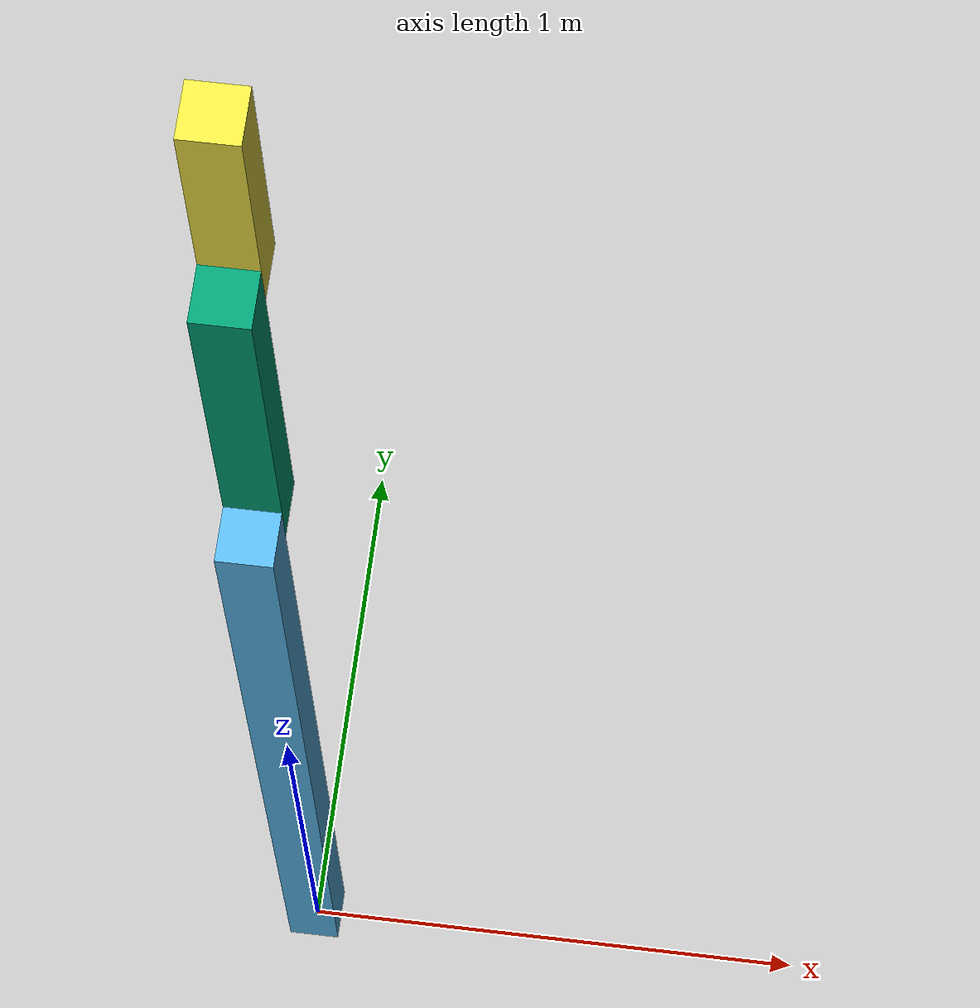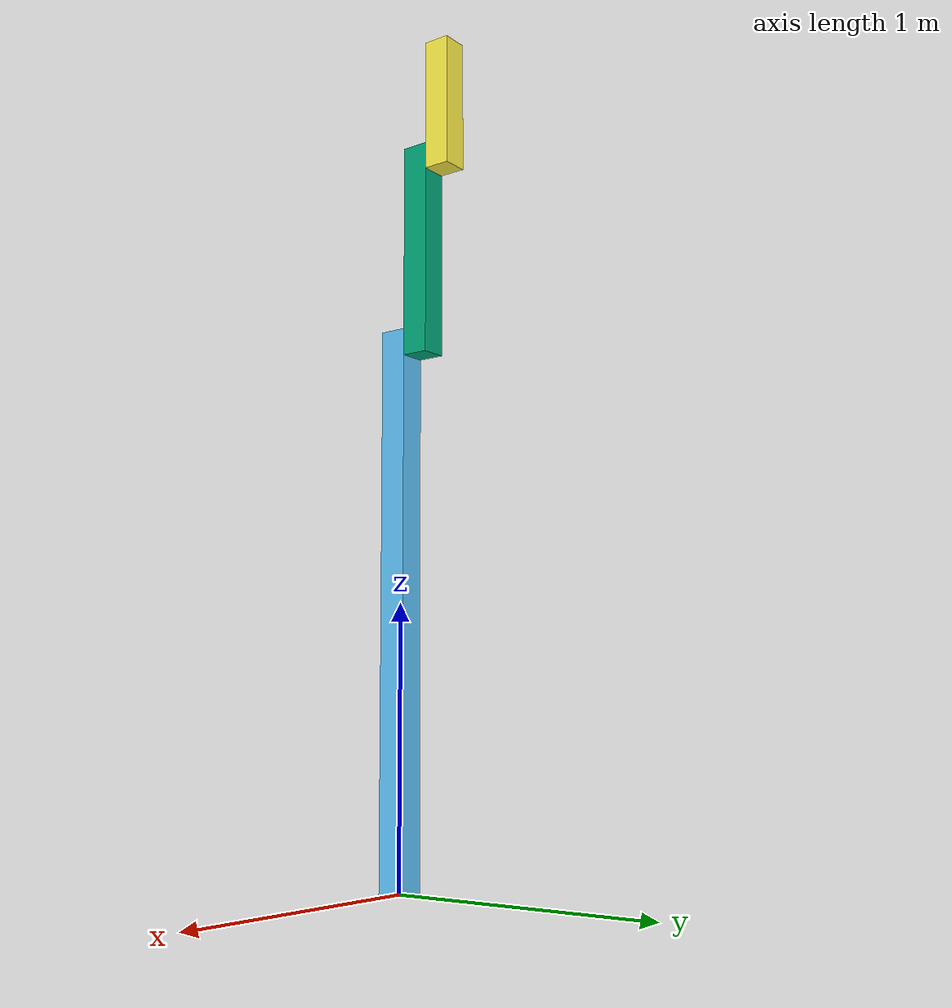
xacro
<?xml version="1.0"?>
<!-- Revolute-Revolute Manipulator -->
<robot name="arm" xmlns:xacro="http://www.ros.org/wiki/xacro">

    <!-- Constants for robot dimensions -->
    <xacro:property name="PI" value="3.1415926535897931"/>
    <xacro:property name="mass" value="1" /> <!-- arbitrary value for mass -->
    <xacro:property name="width" value="0.1" /> <!-- Square dimensions (widthxwidth) of beams -->
    <xacro:property name="height1" value="2" /> <!-- Link 1 -->
    <xacro:property name="height2" value="0.8" /> <!-- Link 2 -->
    <xacro:property name="height3" value="0.5" /> <!-- Link 3 -->
    <xacro:property name="axel_offset" value="0.05" /> <!-- Space btw top of beam and the each joint -->

    <!-- load the joint control plugins and pass the arguments -->
    <xacro:arg name="robot_components_namespace" default="arm"/>
    <xacro:arg name="trajectory_param_namespace" default="arm"/>
    <xacro:include filename="$(find simple_arm)/urdf/arm_plugin.xacro"/>
    <xacro:gzplugin_joint_control robot_components_namespace="$(arg robot_components_namespace)"/>

    <!-- Used for fixing robot to Gazebo 'base_link' -->
    <link name="world"/>

    <joint name="fixed" type="fixed">
        <parent link="world"/>
        <child link="link1"/>
    </joint>

    <!-- Base Link -->
    <link name="link1">
        <collision>
        <origin xyz="0 0 ${height1/2}" rpy="0 0 0"/>
        <geometry>
            <box size="${width} ${width} ${height1}"/>
        </geometry>
        </collision>

        <visual>
        <origin xyz="0 0 ${height1/2}" rpy="0 0 0"/>
        <geometry>
            <box size="${width} ${width} ${height1}"/>
        </geometry>
        </visual>

        <inertial>
        <origin xyz="0 0 ${height1/2}" rpy="0 0 0"/>
        <mass value="${mass}"/>
        <inertia
            ixx="${mass / 12.0 * (width*width + height1*height1)}" ixy="0.0" ixz="0.0"
            iyy="${mass / 12.0 * (height1*height1 + width*width)}" iyz="0.0"
            izz="${mass / 12.0 * (width*width + width*width)}"/>
        </inertial>
    </link>

    <joint name="joint1" type="continuous">
        <parent link="link1"/>
        <child link="link2"/>
        <origin xyz="0 ${width} ${height1 - axel_offset}" rpy="0 0 0"/>
        <axis xyz="0 1 0"/>
        <dynamics damping="0.7"/>
    </joint>

    <!-- Middle Link -->
    <link name="link2">
        <collision>
        <origin xyz="0 0 ${height2/2 - axel_offset}" rpy="0 0 0"/>
        <geometry>
            <box size="${width} ${width} ${height2}"/>
        </geometry>
        </collision>

        <visual>
        <origin xyz="0 0 ${height2/2 - axel_offset}" rpy="0 0 0"/>
        <geometry>
            <box size="${width} ${width} ${height2}"/>
        </geometry>
        </visual>

        <inertial>
        <origin xyz="0 0 ${height2/2 - axel_offset}" rpy="0 0 0"/>
        <mass value="${mass}"/>
        <inertia
            ixx="${mass / 12.0 * (width*width + height2*height2)}" ixy="0.0" ixz="0.0"
            iyy="${mass / 12.0 * (height2*height2 + width*width)}" iyz="0.0"
            izz="${mass / 12.0 * (width*width + width*width)}"/>
        </inertial>
    </link>

    <joint name="joint2" type="continuous">
        <parent link="link2"/>
        <child link="link3"/>
        <origin xyz="0 ${width} ${height2 - axel_offset*2}" rpy="0 0 0"/>
        <axis xyz="0 1 0"/>
        <dynamics damping="0.7"/>
    </joint>

    <!-- Top Link -->
    <link name="link3">
        <collision>
        <origin xyz="0 0 ${height3/2 - axel_offset}" rpy="0 0 0"/>
        <geometry>
            <box size="${width} ${width} ${height3}"/>
        </geometry>
        </collision>

        <visual>
        <origin xyz="0 0 ${height3/2 - axel_offset}" rpy="0 0 0"/>
        <geometry>
            <box size="${width} ${width} ${height3}"/>
        </geometry>
        </visual>

        <inertial>
        <origin xyz="0 0 ${height3/2 - axel_offset}" rpy="0 0 0"/>
        <mass value="${mass}"/>
        <inertia
            ixx="${mass / 12.0 * (width*width + height3*height3)}" ixy="0.0" ixz="0.0"
            iyy="${mass / 12.0 * (height3*height3 + width*width)}" iyz="0.0"
            izz="${mass / 12.0 * (width*width + width*width)}"/>
        </inertial>
    </link>

</robot>
